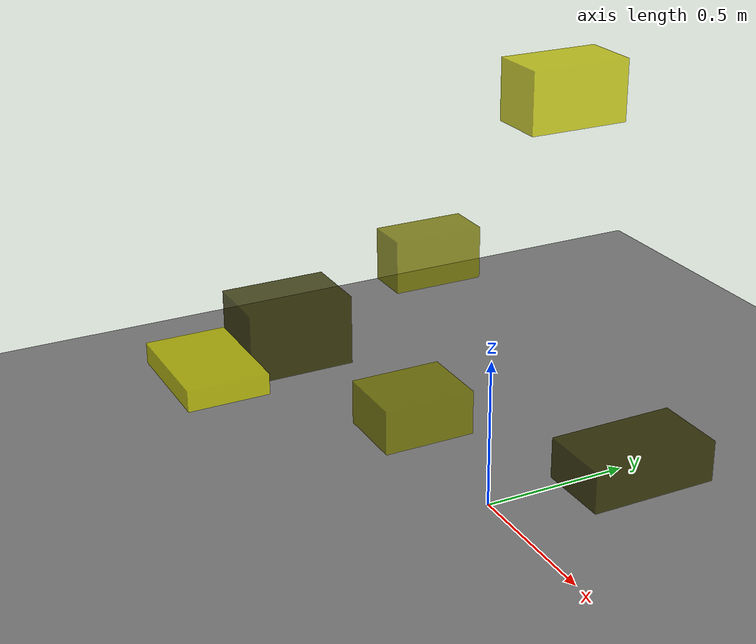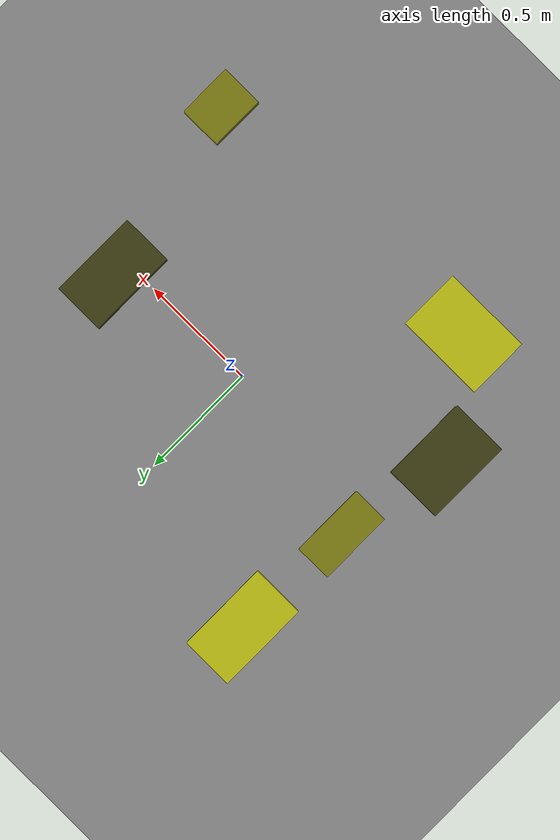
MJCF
<?xml version="1.0"?>
<mujoco model="obstacle_scene">
  <compiler angle="radian" coordinate="local"/>
  <option timestep="0.001" gravity="0 0 -9.81"/>

  <asset>
    <material name="obstacle_mat" rgba="0.8 0.8 0.0 0.8"/>
    <material name="ground_mat" rgba="0.5 0.5 0.5 1"/>
  </asset>

  <worldbody>
    <!-- Ground plane -->
    <geom name="ground" type="plane" size="3 3 0.1" material="ground_mat"/>

    <!-- Obstacles -->
    <body name="obstacle_0" pos="-0.807849 -0.327137 0.357167">
      <geom name="obs_0" type="box" size="0.122011 0.182986 0.122810" rgba="0.2 0.2 0.0 0.8"/>
    </body>
    <body name="obstacle_1" pos="-0.716205 0.165031 0.570327">
      <geom name="obs_1" type="box" size="0.076795 0.157879 0.091924" rgba="0.5 0.5 0.0 0.8"/>
    </body>
    <body name="obstacle_2" pos="-0.687225 0.672914 1.088469">
      <geom name="obs_2" type="box" size="0.107418 0.187812 0.112204" rgba="0.8 0.8 0.0 0.8"/>
    </body>
    <body name="obstacle_3" pos="0.630881 0.074765 0.462823">
      <geom name="obs_3" type="box" size="0.109256 0.189959 0.061206" rgba="0.2 0.2 0.0 0.8"/>
    </body>
    <body name="obstacle_4" pos="0.764262 -0.669656 0.863687">
      <geom name="obs_4" type="box" size="0.088640 0.112497 0.054916" rgba="0.5 0.5 0.0 0.8"/>
    </body>
    <body name="obstacle_5" pos="-0.505603 -0.727722 0.423947">
      <geom name="obs_5" type="box" size="0.190508 0.131175 0.034629" rgba="0.8 0.8 0.0 0.8"/>
    </body>
  </worldbody>
</mujoco>
